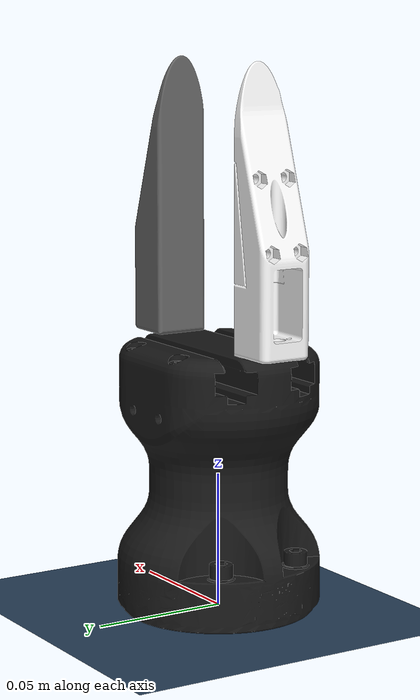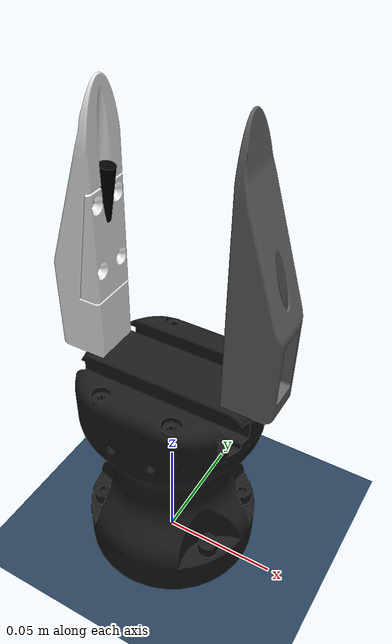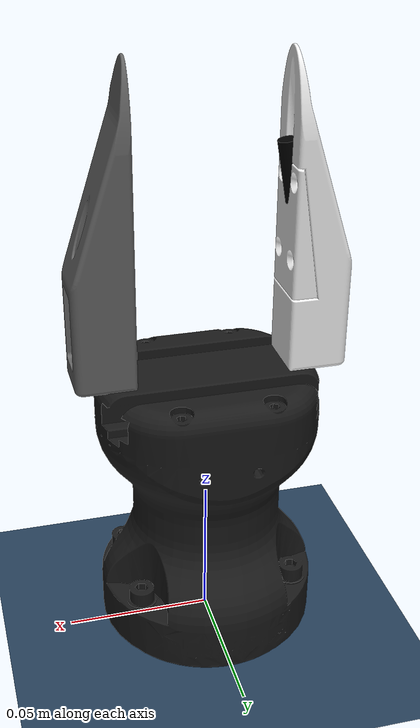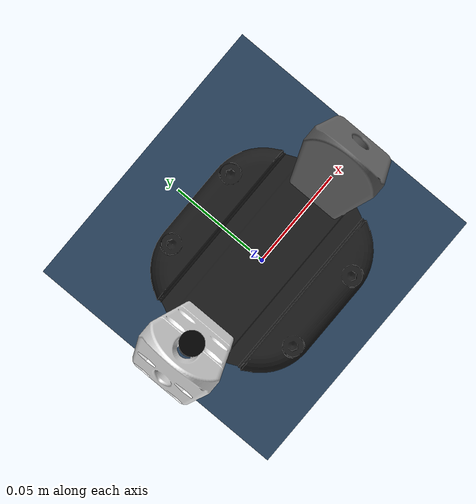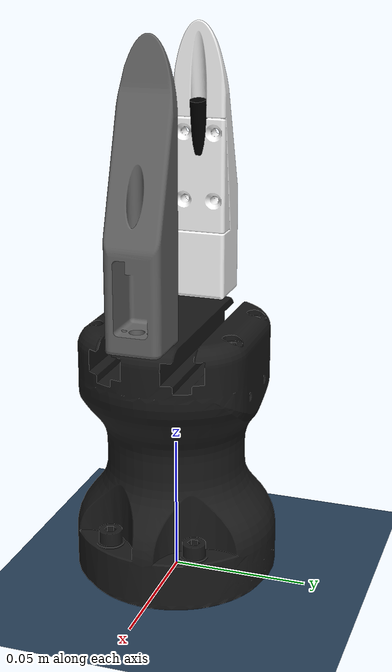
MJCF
<mujoco model="robotiq_hande">
  <compiler angle="radian" autolimits="true" meshdir="meshes/" />

  <default>
    <default class="visual">
      <geom type="mesh" contype="0" conaffinity="0" group="2"/>
    </default>
    <default class="gripper">
      <joint armature="0.01" damping=".1" pos="0 0 0" range="0 0.025" limited="true" />
      <general dyntype="none" biastype="affine" forcerange="-10 10" ctrlrange="0 0.025" gainprm="100 0 0" biasprm="0 -100 -10" />
    </default>
  </default>

  <asset>
    <mesh name="hand-e" file="hand-e.stl" scale="0.001 0.001 0.001" />
    <mesh name="hand-e_finger" file="hand-e_finger.stl" scale="-0.001 0.001 0.001"/>
    <mesh name="hand-e_finger_cam" file="hand-e_finger_cam.stl" scale="0.001 0.001 0.001"/>
  </asset>

  <contact>
    <exclude body1="hand_base" body2="hande_left_finger" />
    <exclude body1="hand_base" body2="hande_right_finger" />
  </contact>

  <worldbody>
    <geom name="floor" size="0 0 .05" type="plane" material="grid" condim="3"/>
    <light name="spotlight" mode="targetbodycom" target="hand_base" diffuse=".8 .8 .8" specular="0.3 0.3 0.3" pos="0 0 2" cutoff="30"/>

    <include file="hand_e.xml" />
  </worldbody>

  <actuator>
    <general name="left_finger"  class="gripper" joint="left_finger" />
    <general name="right_finger" class="gripper" joint="right_finger" />
  </actuator>

  <!-- scene visuals -->
  <visual>
    <headlight diffuse="0.6 0.6 0.6" ambient="0.3 0.3 0.3" specular="0 0 0"/>
    <rgba haze="0.15 0.25 0.35 1"/>
    <global azimuth="120" elevation="-20"/>
  </visual>

  <asset>
    <texture type="skybox" builtin="gradient" rgb1=".3 .5 .7" rgb2="0 0 0" width="32" height="512"/>
    <texture name="body" type="cube" builtin="flat" mark="cross" width="128" height="128" rgb1="0.8 0.6 0.4" rgb2="0.8 0.6 0.4" markrgb="1 1 1" random="0.01"/>
    <texture name="grid" type="2d" builtin="checker" width="512" height="512" rgb1=".1 .2 .3" rgb2=".2 .3 .4"/>
    <material name="grid" texture="grid" texrepeat="1 1" texuniform="true" reflectance=".2"/>
  </asset>
</mujoco>

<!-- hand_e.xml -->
<mujoco model="robotiq_hand-e">
  <body name="hand_base">
    <geom type="mesh" rgba="0.1 0.1 0.1 1" mesh="hand-e"/>

    <body name="hande_left_finger" pos="0.045 -0.0105 0.099">
      <inertial pos="0.02262 -0.00759 0.00738" quat="0.871952 0.0369732 -0.211073 0.440205" mass="0.03804" diaginertia="1.22763e-05 1.22763e-05 1.22763e-05"/>
      <joint class="gripper" name="left_finger" pos="0 0 0" axis="-1 0 0" type="slide" />
      <geom name="left_finger" type="mesh" rgba="0.4 0.4 0.4 1" mesh="hand-e_finger" priority="1" solimp="0.95 0.99 0.001 0.5 2"/>
    </body>

    <body name="hande_right_finger" pos="-0.045 -0.0105  0.099">
      <inertial pos="-0.02262 0.00759 0.00738" quat="0.871952 -0.0369732 0.211073 0.440205" mass="0.03804" diaginertia="1.22763e-05 1.22763e-05 1.22763e-05"/>
      <joint class="gripper" name="right_finger" pos="0 0 0" axis="1 0 0" type="slide" range="0 0.025"/>
      <geom name="right_finger" type="mesh" rgba="1 1 1 1" mesh="hand-e_finger_cam" priority="1" solimp="0.95 0.99 0.001 0.5 2"/>
      <geom type="cylinder" pos="0.019 0.0105 0.065" quat="0.996 0 0.087 0" class="visual" rgba="0 0 0 1" size="0.003 0.01" />
      <camera name="gripper_cam" pos="0.025 0.0105 0.055" quat="-0.062 0.704 0.704 -0.062" />
    </body>
  </body>
</mujoco>
